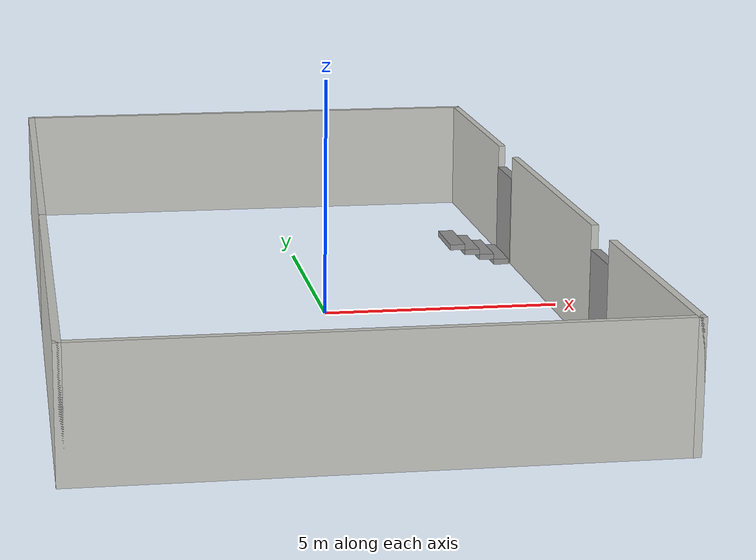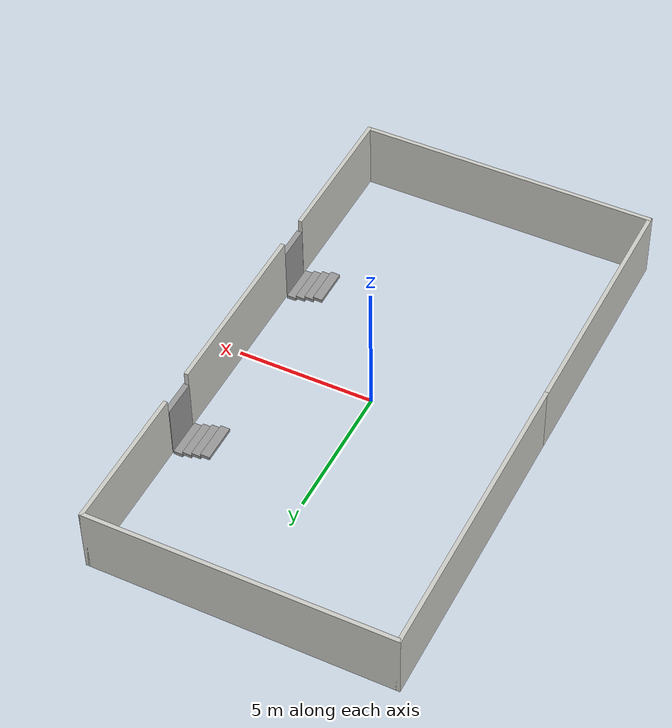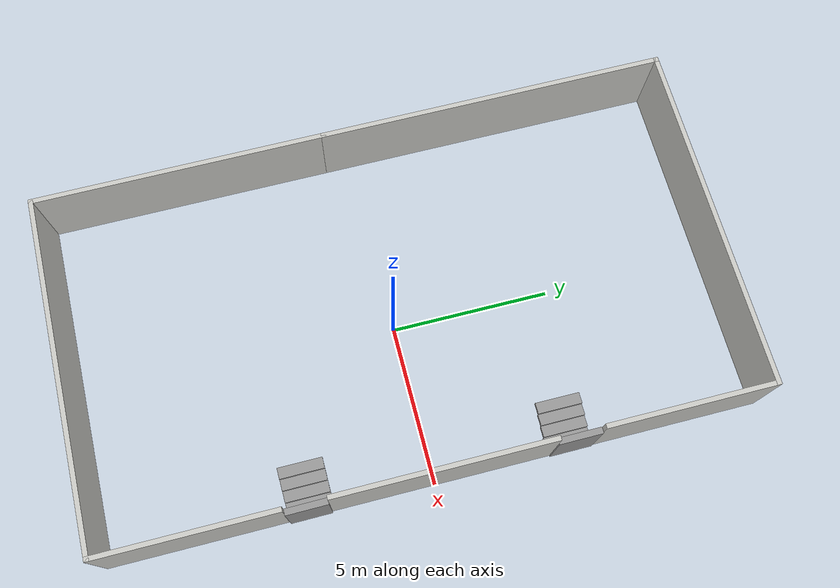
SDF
<?xml version='1.0'?>
<sdf version='1.7'>
  <model name='uni_lab'>
    <pose>-0.494909 0.135 0 0 -0 0</pose>
    <link name='Door_0'>
      <collision name='Door_0_Collision'>
        <geometry>
          <box>
            <size>1.27502 0.2 2</size>
          </box>
        </geometry>
        <pose>0 0 1 0 -0 0</pose>
      </collision>
      <visual name='Door_0_Visual'>
        <pose>0 0 1 0 -0 0</pose>
        <geometry>
          <box>
            <size>1.27502 0.2 2</size>
          </box>
        </geometry>
        <material>
          <script>
            <uri>file://media/materials/scripts/gazebo.material</uri>
            <name>Gazebo/Grey</name>
          </script>
        </material>
      </visual>
      <pose>5.45453 -3.91442 0 0 -0 1.57588</pose>
    </link>
    <link name='Door_1'>
      <collision name='Door_1_Collision'>
        <geometry>
          <box>
            <size>1.32225 0.2 2</size>
          </box>
        </geometry>
        <pose>0 0 1 0 -0 0</pose>
      </collision>
      <visual name='Door_1_Visual'>
        <pose>0 0 1 0 -0 0</pose>
        <geometry>
          <box>
            <size>1.32225 0.2 2</size>
          </box>
        </geometry>
        <material>
          <script>
            <uri>file://media/materials/scripts/gazebo.material</uri>
            <name>Gazebo/Grey</name>
          </script>
        </material>
      </visual>
      <pose>5.43535 4.13457 0 0 -0 1.57249</pose>
    </link>
    <link name='Stairs_5'>
      <visual name='Stairs_5_Visual_0'>
        <pose>5.13269 4.12145 0.0625 0 -0 -1.5708</pose>
        <geometry>
          <box>
            <size>1.39 0.3425 0.125</size>
          </box>
        </geometry>
        <material>
          <script>
            <uri>file://media/materials/scripts/gazebo.material</uri>
            <name>Gazebo/Grey</name>
          </script>
          <ambient>1 1 1 1</ambient>
        </material>
        <meta>
          <layer>0</layer>
        </meta>
      </visual>
      <collision name='Stairs_5_Collision_0'>
        <geometry>
          <box>
            <size>1.39 0.3425 0.125</size>
          </box>
        </geometry>
        <pose>5.13269 4.12145 0.0625 0 -0 -1.5708</pose>
      </collision>
      <visual name='Stairs_5_Visual_1'>
        <pose>4.79019 4.12145 0.1875 0 -0 -1.5708</pose>
        <geometry>
          <box>
            <size>1.39 0.3425 0.125</size>
          </box>
        </geometry>
        <material>
          <script>
            <uri>file://media/materials/scripts/gazebo.material</uri>
            <name>Gazebo/Grey</name>
          </script>
          <ambient>1 1 1 1</ambient>
        </material>
        <meta>
          <layer>0</layer>
        </meta>
      </visual>
      <collision name='Stairs_5_Collision_1'>
        <geometry>
          <box>
            <size>1.39 0.3425 0.125</size>
          </box>
        </geometry>
        <pose>4.79019 4.12145 0.1875 0 -0 -1.5708</pose>
      </collision>
      <visual name='Stairs_5_Visual_2'>
        <pose>4.44769 4.12145 0.3125 0 -0 -1.5708</pose>
        <geometry>
          <box>
            <size>1.39 0.3425 0.125</size>
          </box>
        </geometry>
        <material>
          <script>
            <uri>file://media/materials/scripts/gazebo.material</uri>
            <name>Gazebo/Grey</name>
          </script>
          <ambient>1 1 1 1</ambient>
        </material>
        <meta>
          <layer>0</layer>
        </meta>
      </visual>
      <collision name='Stairs_5_Collision_2'>
        <geometry>
          <box>
            <size>1.39 0.3425 0.125</size>
          </box>
        </geometry>
        <pose>4.44769 4.12145 0.3125 0 -0 -1.5708</pose>
      </collision>
      <visual name='Stairs_5_Visual_3'>
        <pose>4.10519 4.12145 0.4375 0 -0 -1.5708</pose>
        <geometry>
          <box>
            <size>1.39 0.3425 0.125</size>
          </box>
        </geometry>
        <material>
          <script>
            <uri>file://media/materials/scripts/gazebo.material</uri>
            <name>Gazebo/Grey</name>
          </script>
          <ambient>1 1 1 1</ambient>
        </material>
        <meta>
          <layer>0</layer>
        </meta>
      </visual>
      <collision name='Stairs_5_Collision_3'>
        <geometry>
          <box>
            <size>1.39 0.3425 0.125</size>
          </box>
        </geometry>
        <pose>4.10519 4.12145 0.4375 0 -0 -1.5708</pose>
      </collision>
    </link>
    <link name='Stairs_6'>
      <visual name='Stairs_6_Visual_0'>
        <pose>5.12481 -3.89959 0.0625 0 0 -1.5708</pose>
        <geometry>
          <box>
            <size>1.39 0.3425 0.125</size>
          </box>
        </geometry>
        <material>
          <script>
            <uri>file://media/materials/scripts/gazebo.material</uri>
            <name>Gazebo/Grey</name>
          </script>
          <ambient>1 1 1 1</ambient>
        </material>
        <meta>
          <layer>0</layer>
        </meta>
      </visual>
      <collision name='Stairs_6_Collision_0'>
        <geometry>
          <box>
            <size>1.39 0.3425 0.125</size>
          </box>
        </geometry>
        <pose>5.12481 -3.89959 0.0625 0 0 -1.5708</pose>
      </collision>
      <visual name='Stairs_6_Visual_1'>
        <pose>4.78231 -3.89959 0.1875 0 0 -1.5708</pose>
        <geometry>
          <box>
            <size>1.39 0.3425 0.125</size>
          </box>
        </geometry>
        <material>
          <script>
            <uri>file://media/materials/scripts/gazebo.material</uri>
            <name>Gazebo/Grey</name>
          </script>
          <ambient>1 1 1 1</ambient>
        </material>
        <meta>
          <layer>0</layer>
        </meta>
      </visual>
      <collision name='Stairs_6_Collision_1'>
        <geometry>
          <box>
            <size>1.39 0.3425 0.125</size>
          </box>
        </geometry>
        <pose>4.78231 -3.89959 0.1875 0 0 -1.5708</pose>
      </collision>
      <visual name='Stairs_6_Visual_2'>
        <pose>4.43981 -3.89959 0.3125 0 0 -1.5708</pose>
        <geometry>
          <box>
            <size>1.39 0.3425 0.125</size>
          </box>
        </geometry>
        <material>
          <script>
            <uri>file://media/materials/scripts/gazebo.material</uri>
            <name>Gazebo/Grey</name>
          </script>
          <ambient>1 1 1 1</ambient>
        </material>
        <meta>
          <layer>0</layer>
        </meta>
      </visual>
      <collision name='Stairs_6_Collision_2'>
        <geometry>
          <box>
            <size>1.39 0.3425 0.125</size>
          </box>
        </geometry>
        <pose>4.43981 -3.89959 0.3125 0 0 -1.5708</pose>
      </collision>
      <visual name='Stairs_6_Visual_3'>
        <pose>4.09731 -3.89959 0.4375 0 0 -1.5708</pose>
        <geometry>
          <box>
            <size>1.39 0.3425 0.125</size>
          </box>
        </geometry>
        <material>
          <script>
            <uri>file://media/materials/scripts/gazebo.material</uri>
            <name>Gazebo/Grey</name>
          </script>
          <ambient>1 1 1 1</ambient>
        </material>
        <meta>
          <layer>0</layer>
        </meta>
      </visual>
      <collision name='Stairs_6_Collision_3'>
        <geometry>
          <box>
            <size>1.39 0.3425 0.125</size>
          </box>
        </geometry>
        <pose>4.09731 -3.89959 0.4375 0 0 -1.5708</pose>
      </collision>
    </link>
    <link name='Wall_11'>
      <collision name='Wall_11_Collision'>
        <geometry>
          <box>
            <size>11 0.15 2.5</size>
          </box>
        </geometry>
        <pose>0 0 1.25 0 -0 0</pose>
      </collision>
      <visual name='Wall_11_Visual'>
        <pose>0 0 1.25 0 -0 0</pose>
        <geometry>
          <box>
            <size>11 0.15 2.5</size>
          </box>
        </geometry>
        <material>
          <script>
            <uri>file://media/materials/scripts/gazebo.material</uri>
            <name>Gazebo/CeilingTiled</name>
          </script>
          <ambient>1 1 1 1</ambient>
        </material>
        <meta>
          <layer>0</layer>
        </meta>
      </visual>
      <pose>-9.1e-05 9.975 0 0 -0 0</pose>
    </link>
    <link name='Wall_13'>
      <collision name='Wall_13_Collision'>
        <geometry>
          <box>
            <size>5.5 0.15 2.5</size>
          </box>
        </geometry>
        <pose>0 0 1.25 0 -0 0</pose>
      </collision>
      <visual name='Wall_13_Visual'>
        <pose>0 0 1.25 0 -0 0</pose>
        <geometry>
          <box>
            <size>5.5 0.15 2.5</size>
          </box>
        </geometry>
        <material>
          <script>
            <uri>file://media/materials/scripts/gazebo.material</uri>
            <name>Gazebo/CeilingTiled</name>
          </script>
          <ambient>1 1 1 1</ambient>
        </material>
        <meta>
          <layer>0</layer>
        </meta>
      </visual>
      <pose>5.42491 -7.3 0 0 -0 1.5708</pose>
    </link>
    <link name='Wall_15'>
      <collision name='Wall_15_Collision'>
        <geometry>
          <box>
            <size>5.25 0.15 2.5</size>
          </box>
        </geometry>
        <pose>0 0 1.25 0 -0 0</pose>
      </collision>
      <visual name='Wall_15_Visual'>
        <pose>0 0 1.25 0 -0 0</pose>
        <geometry>
          <box>
            <size>5.25 0.15 2.5</size>
          </box>
        </geometry>
        <material>
          <script>
            <uri>file://media/materials/scripts/gazebo.material</uri>
            <name>Gazebo/CeilingTiled</name>
          </script>
          <ambient>1 1 1 1</ambient>
        </material>
        <meta>
          <layer>0</layer>
        </meta>
      </visual>
      <pose>5.42491 7.425 0 0 -0 -1.5708</pose>
    </link>
    <link name='Wall_23'>
      <collision name='Wall_23_Collision'>
        <geometry>
          <box>
            <size>6.75 0.15 2.5</size>
          </box>
        </geometry>
        <pose>0 0 1.25 0 -0 0</pose>
      </collision>
      <visual name='Wall_23_Visual'>
        <pose>0 0 1.25 0 -0 0</pose>
        <geometry>
          <box>
            <size>6.75 0.15 2.5</size>
          </box>
        </geometry>
        <material>
          <script>
            <uri>file://media/materials/scripts/gazebo.material</uri>
            <name>Gazebo/CeilingTiled</name>
          </script>
          <ambient>1 1 1 1</ambient>
        </material>
        <meta>
          <layer>0</layer>
        </meta>
      </visual>
      <pose>5.42509 0.096254 0 0 -0 -1.5708</pose>
    </link>
    <link name='Wall_5'>
      <collision name='Wall_5_Collision'>
        <geometry>
          <box>
            <size>9.25 0.15 2.5</size>
          </box>
        </geometry>
        <pose>0 0 1.25 0 -0 0</pose>
      </collision>
      <visual name='Wall_5_Visual'>
        <pose>0 0 1.25 0 -0 0</pose>
        <geometry>
          <box>
            <size>9.25 0.15 2.5</size>
          </box>
        </geometry>
        <material>
          <script>
            <uri>file://media/materials/scripts/gazebo.material</uri>
            <name>Gazebo/CeilingTiled</name>
          </script>
          <ambient>1 1 1 1</ambient>
        </material>
        <meta>
          <layer>0</layer>
        </meta>
      </visual>
      <pose>-5.42509 -5.425 0 0 -0 -1.5708</pose>
    </link>
    <link name='Wall_7'>
      <collision name='Wall_7_Collision'>
        <geometry>
          <box>
            <size>11 0.15 2.5</size>
          </box>
        </geometry>
        <pose>0 0 1.25 0 -0 0</pose>
      </collision>
      <visual name='Wall_7_Visual'>
        <pose>0 0 1.25 0 -0 0</pose>
        <geometry>
          <box>
            <size>11 0.15 2.5</size>
          </box>
        </geometry>
        <material>
          <script>
            <uri>file://media/materials/scripts/gazebo.material</uri>
            <name>Gazebo/CeilingTiled</name>
          </script>
          <ambient>1 1 1 1</ambient>
        </material>
        <meta>
          <layer>0</layer>
        </meta>
      </visual>
      <pose>-5.42509 4.55 0 0 -0 1.5708</pose>
    </link>
    <link name='Wall_9'>
      <collision name='Wall_9_Collision'>
        <geometry>
          <box>
            <size>11 0.15 2.5</size>
          </box>
        </geometry>
        <pose>0 0 1.25 0 -0 0</pose>
      </collision>
      <visual name='Wall_9_Visual'>
        <pose>0 0 1.25 0 -0 0</pose>
        <geometry>
          <box>
            <size>11 0.15 2.5</size>
          </box>
        </geometry>
        <material>
          <script>
            <uri>file://media/materials/scripts/gazebo.material</uri>
            <name>Gazebo/CeilingTiled</name>
          </script>
          <ambient>1 1 1 1</ambient>
        </material>
        <meta>
          <layer>0</layer>
        </meta>
      </visual>
      <pose>-9.1e-05 -9.975 0 0 -0 0</pose>
    </link>
    <static>1</static>
  </model>
</sdf>
